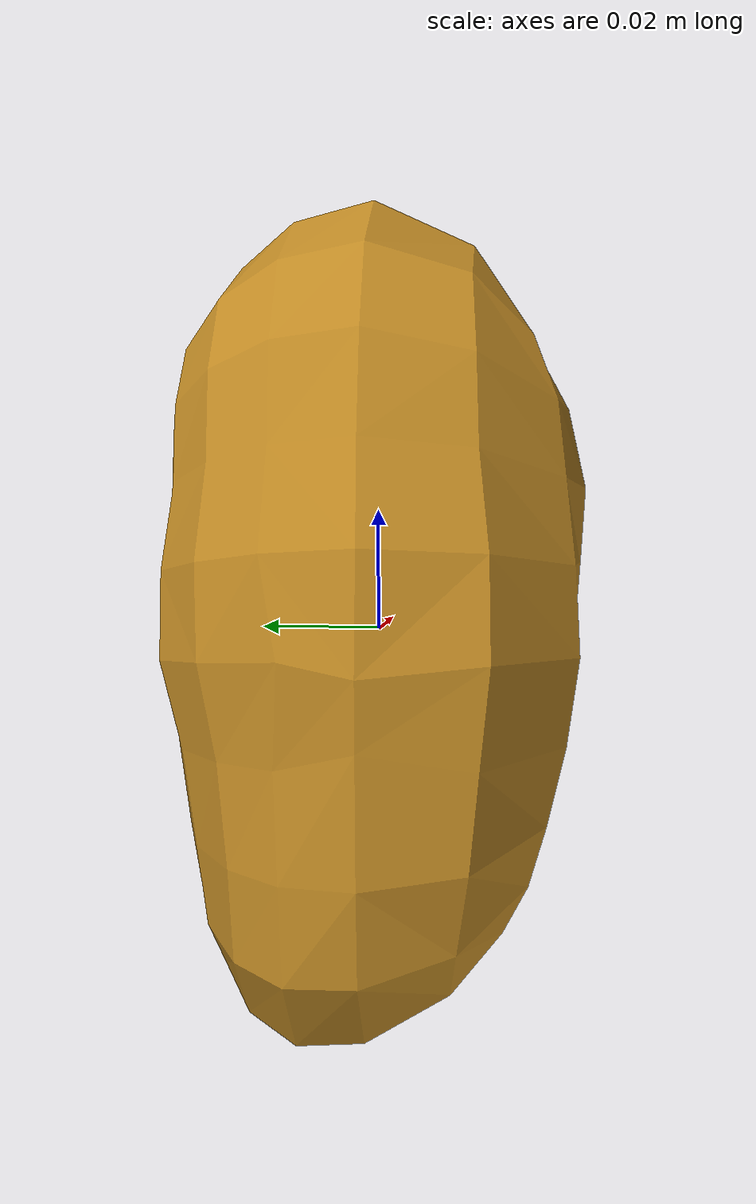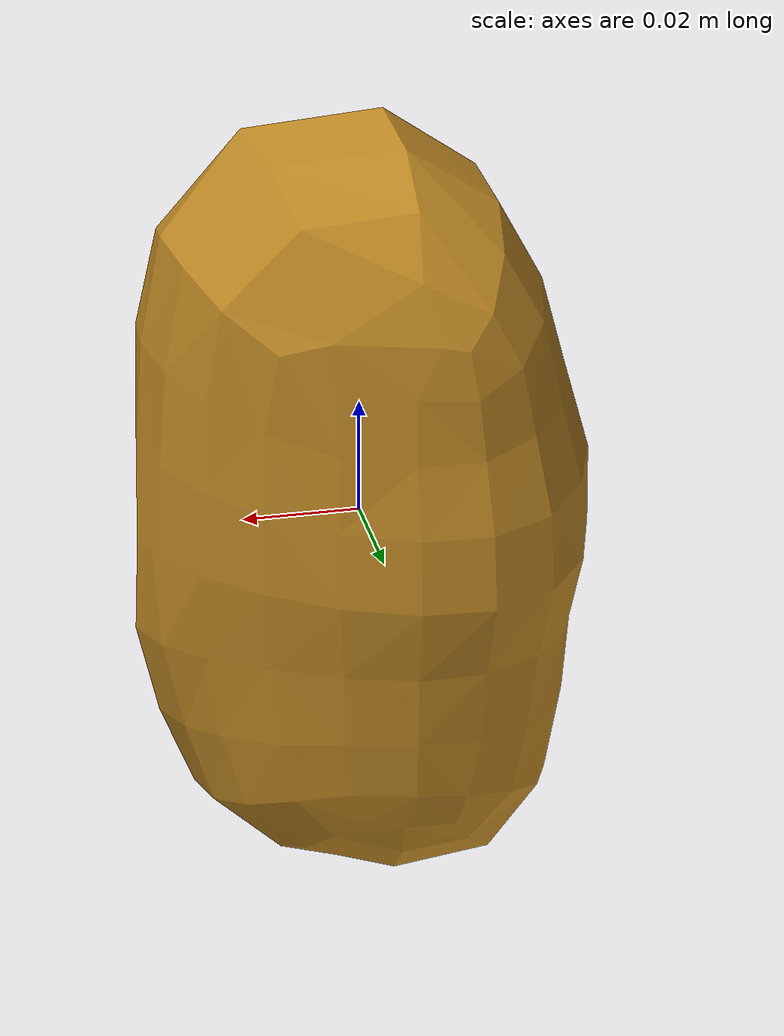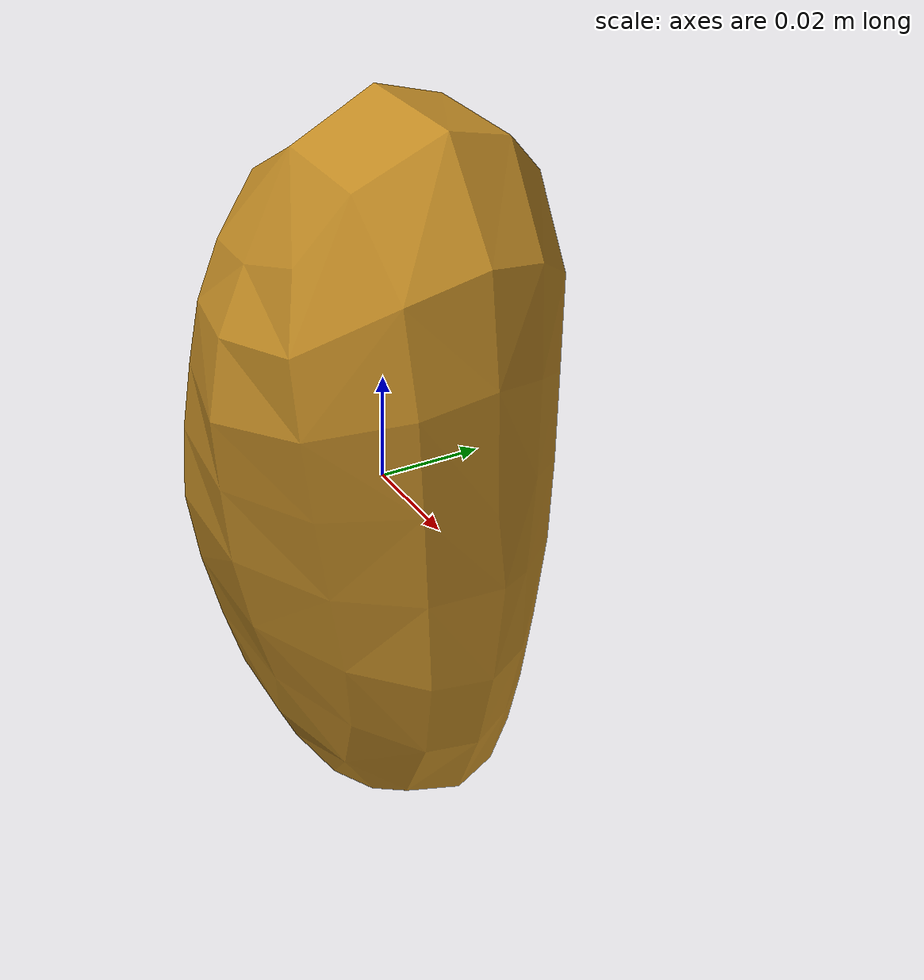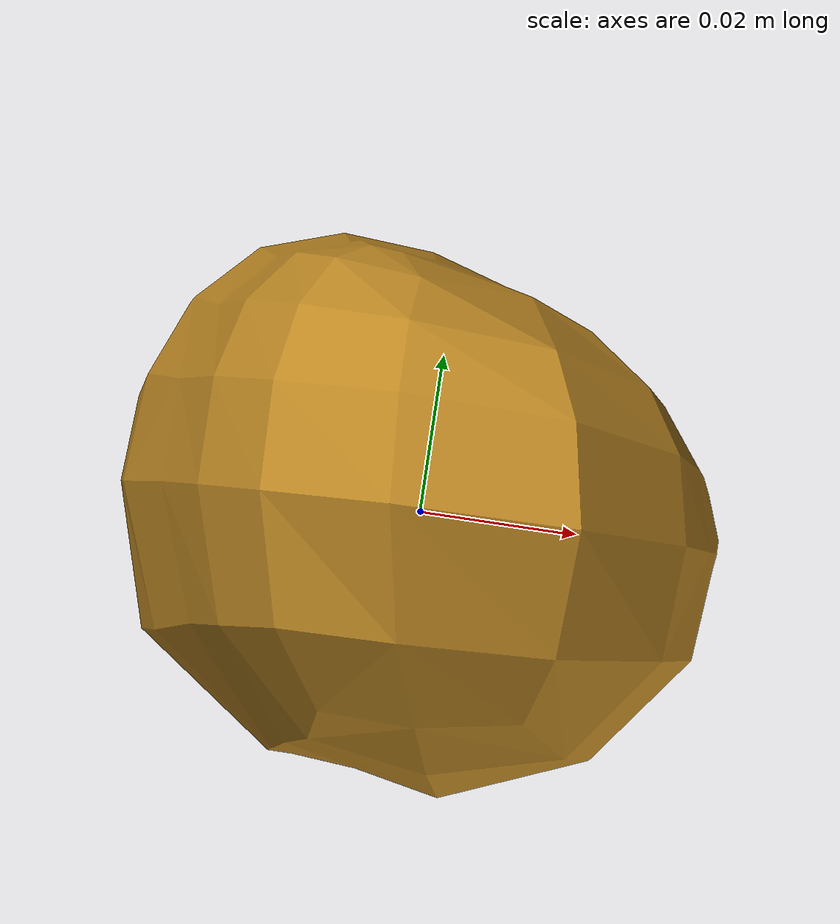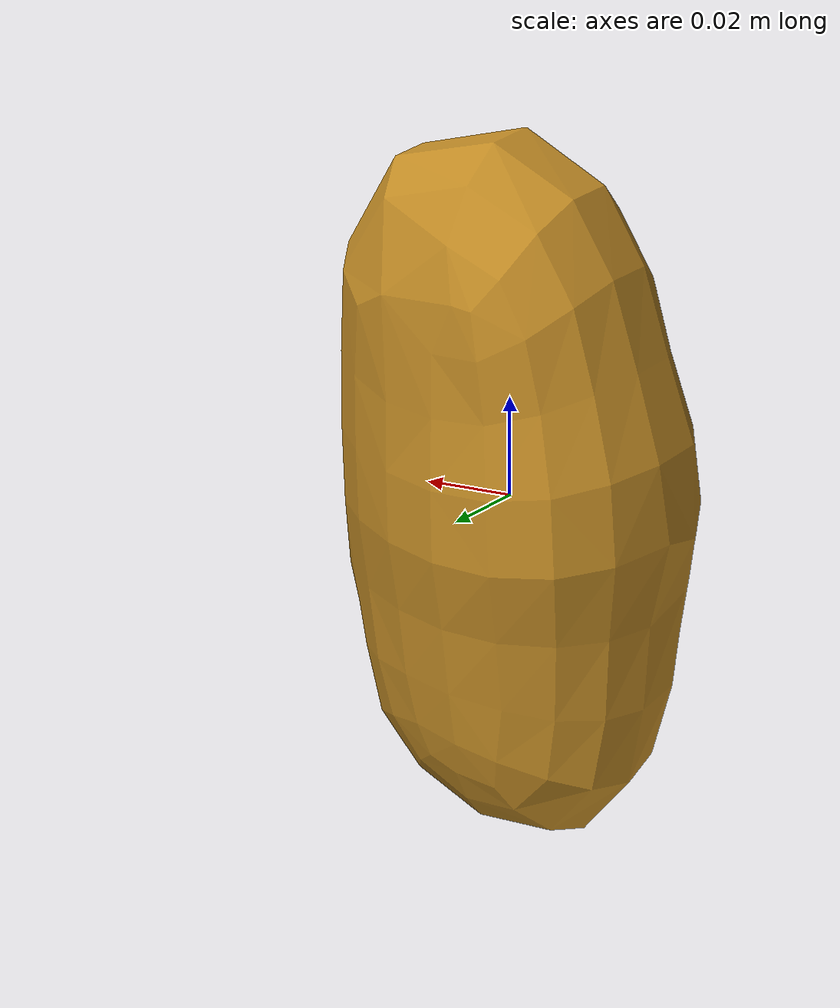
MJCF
<mujoco model="Potato_18">
  <compiler autolimits="true" boundmass="0.01" angle="radian"/>
  <default>
    <default class="/">
      <default class="__VISUAL_MJT__">
        <geom contype="0" conaffinity="0" group="0"/>
      </default>
      <default class="__STRUCTURAL_MJT__">
        <geom contype="8" conaffinity="15" group="4" friction="0.90000000000000002 0.90000000000000002 0.001" solref="0.025000000000000001 1" solimp="0.998 0.998 0.001"/>
      </default>
      <default class="__DYNAMIC_MJT__">
        <geom contype="1" conaffinity="15" group="4" friction="0.90000000000000002 0.90000000000000002 0.001" solref="0.025000000000000001 1" solimp="0.998 0.998 0.001"/>
      </default>
    </default>
  </default>
  <asset>
    <texture name="Potato2_Mat3" type="2d" file="Potato2_AlbedoTransparency.png"/>
    <material name="material_Potato2_Mat3" class="/" texture="Potato2_Mat3" specular="0.5" shininess="0.5" rgba="1 0.74807299999999999 0.20588239999999999 1"/>
    <mesh name="Potato_18_potato_b8" class="/" file="Potato_18_potato_b8/Potato_18_potato_b8.obj" scale="1 1 1"/>
  </asset>
  <worldbody>
    <body name="Potato_18">
      <joint name="Potato_18_free" class="/" type="free" pos="0 0 0" axis="0 0 1" stiffness="0" range="0 0" armature="0" damping="0.10000000000000001" frictionloss="0"/>
      <body name="Potato_18_potato_b8" pos="-6.9999999999999994e-05 -0.00045645690917968748 -0.0034443322753906248" quat="0.99969136714935303 -0.02484392374753952 0 0">
        <geom name="Potato_18_potato_b8" class="__VISUAL_MJT__" type="mesh" material="material_Potato2_Mat3" shellinertia="true" mesh="Potato_18_potato_b8"/>
        <geom name="Potato_18_PrimitiveCollider_0" class="__DYNAMIC_MJT__" type="capsule" size="0.037169884890317917 0.033279944211244583" rgba="0 1 0 1" pos="-7.05718994140625e-05 0.00025503593496978283 0.0034095041919499636" quat="1.4751396609986736e-06 0.99999999999891198 0 0"/>
      </body>
    </body>
  </worldbody>
</mujoco>
